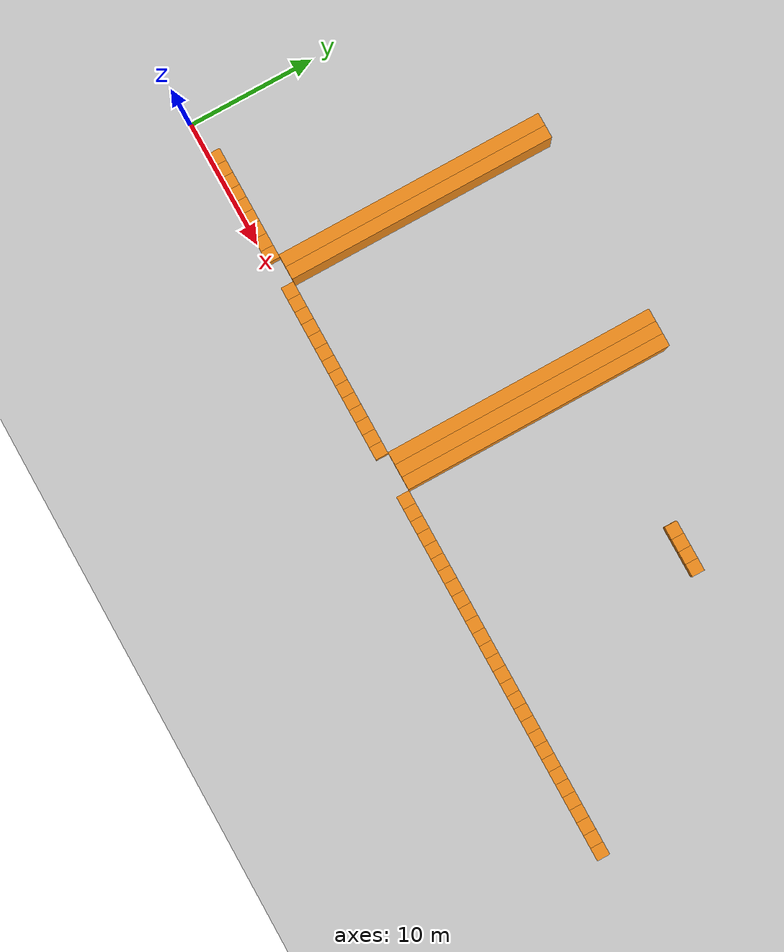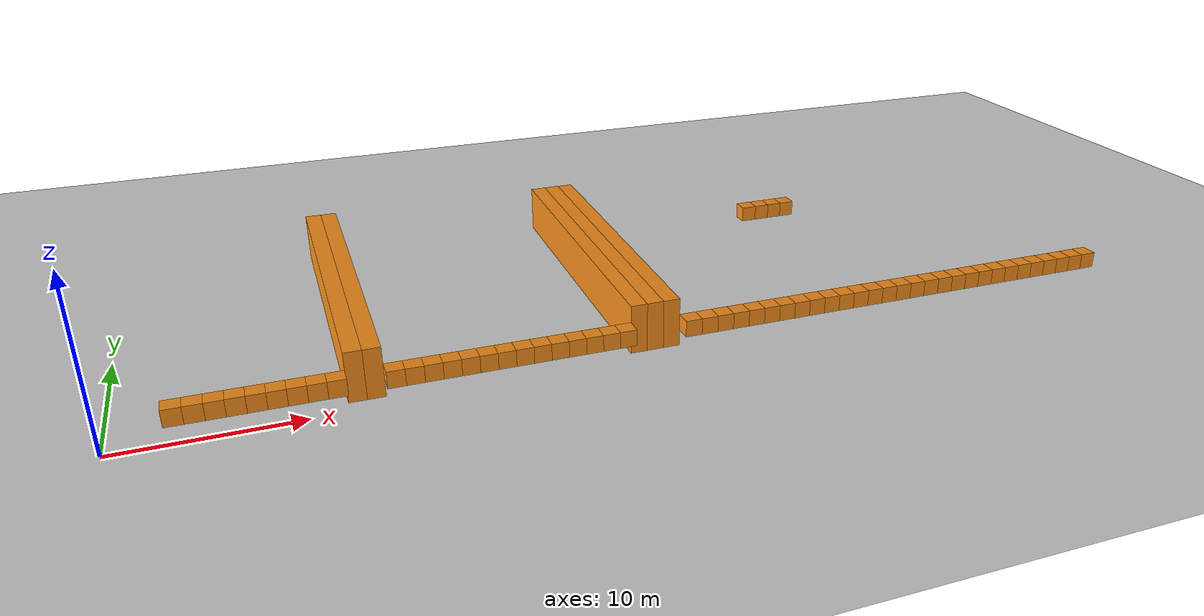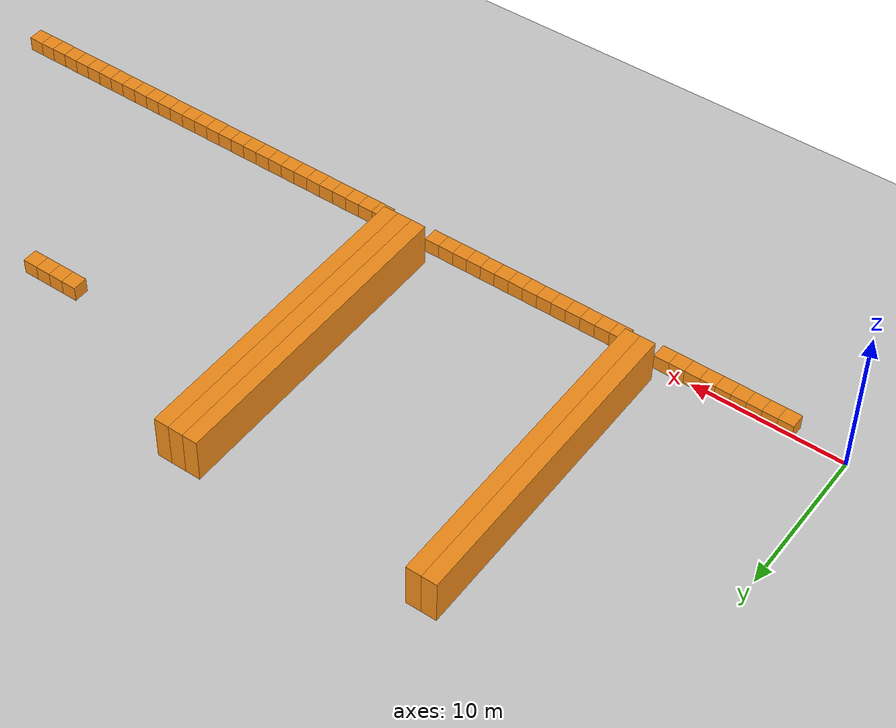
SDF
<sdf version="1.6">
 <world name="default">
  <include><uri>model://ground_plane</uri></include>
  <model name="unit_box_002">
   <pose>3.50     0.50     1.50 0 0 0</pose>
   <static>1</static>
   <link name="link">
    <inertial>
     <mass>5000</mass>
     <inertia><ixx>200</ixx><ixy>0</ixy><ixz>0</ixz><iyy>200</iyy><iyz>0</iyz><izz>200</izz></inertia>
    </inertial>
    <collision name="collision"><geometry><box><size>1 1 1</size></box></geometry></collision>
    <visual name="visual">
     <geometry><box><size>1 1 1</size></box></geometry>
     <material>
      <script><name>Gazebo/Orange</name><uri>file://media/materials/scripts/gazebo.material</uri></script>
     </material>
    </visual>
   </link>
  </model>
  <model name="unit_box_005">
   <pose>4.50     0.50     1.50 0 0 0</pose>
   <static>1</static>
   <link name="link">
    <inertial>
     <mass>5000</mass>
     <inertia><ixx>200</ixx><ixy>0</ixy><ixz>0</ixz><iyy>200</iyy><iyz>0</iyz><izz>200</izz></inertia>
    </inertial>
    <collision name="collision"><geometry><box><size>1 1 1</size></box></geometry></collision>
    <visual name="visual">
     <geometry><box><size>1 1 1</size></box></geometry>
     <material>
      <script><name>Gazebo/Orange</name><uri>file://media/materials/scripts/gazebo.material</uri></script>
     </material>
    </visual>
   </link>
  </model>
  <model name="unit_box_008">
   <pose>5.50     0.50     1.50 0 0 0</pose>
   <static>1</static>
   <link name="link">
    <inertial>
     <mass>5000</mass>
     <inertia><ixx>200</ixx><ixy>0</ixy><ixz>0</ixz><iyy>200</iyy><iyz>0</iyz><izz>200</izz></inertia>
    </inertial>
    <collision name="collision"><geometry><box><size>1 1 1</size></box></geometry></collision>
    <visual name="visual">
     <geometry><box><size>1 1 1</size></box></geometry>
     <material>
      <script><name>Gazebo/Orange</name><uri>file://media/materials/scripts/gazebo.material</uri></script>
     </material>
    </visual>
   </link>
  </model>
  <model name="unit_box_011">
   <pose>6.50     0.50     1.50 0 0 0</pose>
   <static>1</static>
   <link name="link">
    <inertial>
     <mass>5000</mass>
     <inertia><ixx>200</ixx><ixy>0</ixy><ixz>0</ixz><iyy>200</iyy><iyz>0</iyz><izz>200</izz></inertia>
    </inertial>
    <collision name="collision"><geometry><box><size>1 1 1</size></box></geometry></collision>
    <visual name="visual">
     <geometry><box><size>1 1 1</size></box></geometry>
     <material>
      <script><name>Gazebo/Orange</name><uri>file://media/materials/scripts/gazebo.material</uri></script>
     </material>
    </visual>
   </link>
  </model>
  <model name="unit_box_014">
   <pose>7.50     0.50     1.50 0 0 0</pose>
   <static>1</static>
   <link name="link">
    <inertial>
     <mass>5000</mass>
     <inertia><ixx>200</ixx><ixy>0</ixy><ixz>0</ixz><iyy>200</iyy><iyz>0</iyz><izz>200</izz></inertia>
    </inertial>
    <collision name="collision"><geometry><box><size>1 1 1</size></box></geometry></collision>
    <visual name="visual">
     <geometry><box><size>1 1 1</size></box></geometry>
     <material>
      <script><name>Gazebo/Orange</name><uri>file://media/materials/scripts/gazebo.material</uri></script>
     </material>
    </visual>
   </link>
  </model>
  <model name="unit_box_017">
   <pose>8.50     0.50     1.50 0 0 0</pose>
   <static>1</static>
   <link name="link">
    <inertial>
     <mass>5000</mass>
     <inertia><ixx>200</ixx><ixy>0</ixy><ixz>0</ixz><iyy>200</iyy><iyz>0</iyz><izz>200</izz></inertia>
    </inertial>
    <collision name="collision"><geometry><box><size>1 1 1</size></box></geometry></collision>
    <visual name="visual">
     <geometry><box><size>1 1 1</size></box></geometry>
     <material>
      <script><name>Gazebo/Orange</name><uri>file://media/materials/scripts/gazebo.material</uri></script>
     </material>
    </visual>
   </link>
  </model>
  <model name="unit_box_020">
   <pose>9.50     0.50     1.50 0 0 0</pose>
   <static>1</static>
   <link name="link">
    <inertial>
     <mass>5000</mass>
     <inertia><ixx>200</ixx><ixy>0</ixy><ixz>0</ixz><iyy>200</iyy><iyz>0</iyz><izz>200</izz></inertia>
    </inertial>
    <collision name="collision"><geometry><box><size>1 1 1</size></box></geometry></collision>
    <visual name="visual">
     <geometry><box><size>1 1 1</size></box></geometry>
     <material>
      <script><name>Gazebo/Orange</name><uri>file://media/materials/scripts/gazebo.material</uri></script>
     </material>
    </visual>
   </link>
  </model>
  <model name="unit_box_023">
   <pose>10.50     0.50     1.50 0 0 0</pose>
   <static>1</static>
   <link name="link">
    <inertial>
     <mass>5000</mass>
     <inertia><ixx>200</ixx><ixy>0</ixy><ixz>0</ixz><iyy>200</iyy><iyz>0</iyz><izz>200</izz></inertia>
    </inertial>
    <collision name="collision"><geometry><box><size>1 1 1</size></box></geometry></collision>
    <visual name="visual">
     <geometry><box><size>1 1 1</size></box></geometry>
     <material>
      <script><name>Gazebo/Orange</name><uri>file://media/materials/scripts/gazebo.material</uri></script>
     </material>
    </visual>
   </link>
  </model>
  <model name="unit_box_026">
   <pose>11.50     0.50     1.50 0 0 0</pose>
   <static>1</static>
   <link name="link">
    <inertial>
     <mass>5000</mass>
     <inertia><ixx>200</ixx><ixy>0</ixy><ixz>0</ixz><iyy>200</iyy><iyz>0</iyz><izz>200</izz></inertia>
    </inertial>
    <collision name="collision"><geometry><box><size>1 1 1</size></box></geometry></collision>
    <visual name="visual">
     <geometry><box><size>1 1 1</size></box></geometry>
     <material>
      <script><name>Gazebo/Orange</name><uri>file://media/materials/scripts/gazebo.material</uri></script>
     </material>
    </visual>
   </link>
  </model>
  <model name="unit_box_029">
   <pose>12.50    11.50     1.50 0 0 0</pose>
   <static>1</static>
   <link name="link">
    <inertial>
     <mass>5000</mass>
     <inertia><ixx>200</ixx><ixy>0</ixy><ixz>0</ixz><iyy>200</iyy><iyz>0</iyz><izz>200</izz></inertia>
    </inertial>
    <collision name="collision"><geometry><box><size>1 21 3</size></box></geometry></collision>
    <visual name="visual">
     <geometry><box><size>1 21 3</size></box></geometry>
     <material>
      <script><name>Gazebo/Orange</name><uri>file://media/materials/scripts/gazebo.material</uri></script>
     </material>
    </visual>
   </link>
  </model>
  <model name="unit_box_032">
   <pose>13.50    11.50     1.50 0 0 0</pose>
   <static>1</static>
   <link name="link">
    <inertial>
     <mass>5000</mass>
     <inertia><ixx>200</ixx><ixy>0</ixy><ixz>0</ixz><iyy>200</iyy><iyz>0</iyz><izz>200</izz></inertia>
    </inertial>
    <collision name="collision"><geometry><box><size>1 21 3</size></box></geometry></collision>
    <visual name="visual">
     <geometry><box><size>1 21 3</size></box></geometry>
     <material>
      <script><name>Gazebo/Orange</name><uri>file://media/materials/scripts/gazebo.material</uri></script>
     </material>
    </visual>
   </link>
  </model>
  <model name="unit_box_035">
   <pose>14.50     0.50     1.50 0 0 0</pose>
   <static>1</static>
   <link name="link">
    <inertial>
     <mass>5000</mass>
     <inertia><ixx>200</ixx><ixy>0</ixy><ixz>0</ixz><iyy>200</iyy><iyz>0</iyz><izz>200</izz></inertia>
    </inertial>
    <collision name="collision"><geometry><box><size>1 1 1</size></box></geometry></collision>
    <visual name="visual">
     <geometry><box><size>1 1 1</size></box></geometry>
     <material>
      <script><name>Gazebo/Orange</name><uri>file://media/materials/scripts/gazebo.material</uri></script>
     </material>
    </visual>
   </link>
  </model>
  <model name="unit_box_038">
   <pose>15.50     0.50     1.50 0 0 0</pose>
   <static>1</static>
   <link name="link">
    <inertial>
     <mass>5000</mass>
     <inertia><ixx>200</ixx><ixy>0</ixy><ixz>0</ixz><iyy>200</iyy><iyz>0</iyz><izz>200</izz></inertia>
    </inertial>
    <collision name="collision"><geometry><box><size>1 1 1</size></box></geometry></collision>
    <visual name="visual">
     <geometry><box><size>1 1 1</size></box></geometry>
     <material>
      <script><name>Gazebo/Orange</name><uri>file://media/materials/scripts/gazebo.material</uri></script>
     </material>
    </visual>
   </link>
  </model>
  <model name="unit_box_041">
   <pose>16.50     0.50     1.50 0 0 0</pose>
   <static>1</static>
   <link name="link">
    <inertial>
     <mass>5000</mass>
     <inertia><ixx>200</ixx><ixy>0</ixy><ixz>0</ixz><iyy>200</iyy><iyz>0</iyz><izz>200</izz></inertia>
    </inertial>
    <collision name="collision"><geometry><box><size>1 1 1</size></box></geometry></collision>
    <visual name="visual">
     <geometry><box><size>1 1 1</size></box></geometry>
     <material>
      <script><name>Gazebo/Orange</name><uri>file://media/materials/scripts/gazebo.material</uri></script>
     </material>
    </visual>
   </link>
  </model>
  <model name="unit_box_044">
   <pose>17.50     0.50     1.50 0 0 0</pose>
   <static>1</static>
   <link name="link">
    <inertial>
     <mass>5000</mass>
     <inertia><ixx>200</ixx><ixy>0</ixy><ixz>0</ixz><iyy>200</iyy><iyz>0</iyz><izz>200</izz></inertia>
    </inertial>
    <collision name="collision"><geometry><box><size>1 1 1</size></box></geometry></collision>
    <visual name="visual">
     <geometry><box><size>1 1 1</size></box></geometry>
     <material>
      <script><name>Gazebo/Orange</name><uri>file://media/materials/scripts/gazebo.material</uri></script>
     </material>
    </visual>
   </link>
  </model>
  <model name="unit_box_047">
   <pose>18.50     0.50     1.50 0 0 0</pose>
   <static>1</static>
   <link name="link">
    <inertial>
     <mass>5000</mass>
     <inertia><ixx>200</ixx><ixy>0</ixy><ixz>0</ixz><iyy>200</iyy><iyz>0</iyz><izz>200</izz></inertia>
    </inertial>
    <collision name="collision"><geometry><box><size>1 1 1</size></box></geometry></collision>
    <visual name="visual">
     <geometry><box><size>1 1 1</size></box></geometry>
     <material>
      <script><name>Gazebo/Orange</name><uri>file://media/materials/scripts/gazebo.material</uri></script>
     </material>
    </visual>
   </link>
  </model>
  <model name="unit_box_050">
   <pose>19.50     0.50     1.50 0 0 0</pose>
   <static>1</static>
   <link name="link">
    <inertial>
     <mass>5000</mass>
     <inertia><ixx>200</ixx><ixy>0</ixy><ixz>0</ixz><iyy>200</iyy><iyz>0</iyz><izz>200</izz></inertia>
    </inertial>
    <collision name="collision"><geometry><box><size>1 1 1</size></box></geometry></collision>
    <visual name="visual">
     <geometry><box><size>1 1 1</size></box></geometry>
     <material>
      <script><name>Gazebo/Orange</name><uri>file://media/materials/scripts/gazebo.material</uri></script>
     </material>
    </visual>
   </link>
  </model>
  <model name="unit_box_053">
   <pose>20.50     0.50     1.50 0 0 0</pose>
   <static>1</static>
   <link name="link">
    <inertial>
     <mass>5000</mass>
     <inertia><ixx>200</ixx><ixy>0</ixy><ixz>0</ixz><iyy>200</iyy><iyz>0</iyz><izz>200</izz></inertia>
    </inertial>
    <collision name="collision"><geometry><box><size>1 1 1</size></box></geometry></collision>
    <visual name="visual">
     <geometry><box><size>1 1 1</size></box></geometry>
     <material>
      <script><name>Gazebo/Orange</name><uri>file://media/materials/scripts/gazebo.material</uri></script>
     </material>
    </visual>
   </link>
  </model>
  <model name="unit_box_056">
   <pose>21.50     0.50     1.50 0 0 0</pose>
   <static>1</static>
   <link name="link">
    <inertial>
     <mass>5000</mass>
     <inertia><ixx>200</ixx><ixy>0</ixy><ixz>0</ixz><iyy>200</iyy><iyz>0</iyz><izz>200</izz></inertia>
    </inertial>
    <collision name="collision"><geometry><box><size>1 1 1</size></box></geometry></collision>
    <visual name="visual">
     <geometry><box><size>1 1 1</size></box></geometry>
     <material>
      <script><name>Gazebo/Orange</name><uri>file://media/materials/scripts/gazebo.material</uri></script>
     </material>
    </visual>
   </link>
  </model>
  <model name="unit_box_059">
   <pose>22.50     0.50     1.50 0 0 0</pose>
   <static>1</static>
   <link name="link">
    <inertial>
     <mass>5000</mass>
     <inertia><ixx>200</ixx><ixy>0</ixy><ixz>0</ixz><iyy>200</iyy><iyz>0</iyz><izz>200</izz></inertia>
    </inertial>
    <collision name="collision"><geometry><box><size>1 1 1</size></box></geometry></collision>
    <visual name="visual">
     <geometry><box><size>1 1 1</size></box></geometry>
     <material>
      <script><name>Gazebo/Orange</name><uri>file://media/materials/scripts/gazebo.material</uri></script>
     </material>
    </visual>
   </link>
  </model>
  <model name="unit_box_062">
   <pose>23.50     0.50     1.50 0 0 0</pose>
   <static>1</static>
   <link name="link">
    <inertial>
     <mass>5000</mass>
     <inertia><ixx>200</ixx><ixy>0</ixy><ixz>0</ixz><iyy>200</iyy><iyz>0</iyz><izz>200</izz></inertia>
    </inertial>
    <collision name="collision"><geometry><box><size>1 1 1</size></box></geometry></collision>
    <visual name="visual">
     <geometry><box><size>1 1 1</size></box></geometry>
     <material>
      <script><name>Gazebo/Orange</name><uri>file://media/materials/scripts/gazebo.material</uri></script>
     </material>
    </visual>
   </link>
  </model>
  <model name="unit_box_065">
   <pose>24.50     0.50     1.50 0 0 0</pose>
   <static>1</static>
   <link name="link">
    <inertial>
     <mass>5000</mass>
     <inertia><ixx>200</ixx><ixy>0</ixy><ixz>0</ixz><iyy>200</iyy><iyz>0</iyz><izz>200</izz></inertia>
    </inertial>
    <collision name="collision"><geometry><box><size>1 1 1</size></box></geometry></collision>
    <visual name="visual">
     <geometry><box><size>1 1 1</size></box></geometry>
     <material>
      <script><name>Gazebo/Orange</name><uri>file://media/materials/scripts/gazebo.material</uri></script>
     </material>
    </visual>
   </link>
  </model>
  <model name="unit_box_068">
   <pose>25.50     0.50     1.50 0 0 0</pose>
   <static>1</static>
   <link name="link">
    <inertial>
     <mass>5000</mass>
     <inertia><ixx>200</ixx><ixy>0</ixy><ixz>0</ixz><iyy>200</iyy><iyz>0</iyz><izz>200</izz></inertia>
    </inertial>
    <collision name="collision"><geometry><box><size>1 1 1</size></box></geometry></collision>
    <visual name="visual">
     <geometry><box><size>1 1 1</size></box></geometry>
     <material>
      <script><name>Gazebo/Orange</name><uri>file://media/materials/scripts/gazebo.material</uri></script>
     </material>
    </visual>
   </link>
  </model>
  <model name="unit_box_071">
   <pose>26.50     0.50     1.50 0 0 0</pose>
   <static>1</static>
   <link name="link">
    <inertial>
     <mass>5000</mass>
     <inertia><ixx>200</ixx><ixy>0</ixy><ixz>0</ixz><iyy>200</iyy><iyz>0</iyz><izz>200</izz></inertia>
    </inertial>
    <collision name="collision"><geometry><box><size>1 1 1</size></box></geometry></collision>
    <visual name="visual">
     <geometry><box><size>1 1 1</size></box></geometry>
     <material>
      <script><name>Gazebo/Orange</name><uri>file://media/materials/scripts/gazebo.material</uri></script>
     </material>
    </visual>
   </link>
  </model>
  <model name="unit_box_074">
   <pose>27.50     0.50     1.50 0 0 0</pose>
   <static>1</static>
   <link name="link">
    <inertial>
     <mass>5000</mass>
     <inertia><ixx>200</ixx><ixy>0</ixy><ixz>0</ixz><iyy>200</iyy><iyz>0</iyz><izz>200</izz></inertia>
    </inertial>
    <collision name="collision"><geometry><box><size>1 1 1</size></box></geometry></collision>
    <visual name="visual">
     <geometry><box><size>1 1 1</size></box></geometry>
     <material>
      <script><name>Gazebo/Orange</name><uri>file://media/materials/scripts/gazebo.material</uri></script>
     </material>
    </visual>
   </link>
  </model>
  <model name="unit_box_077">
   <pose>28.50    11.50     1.50 0 0 0</pose>
   <static>1</static>
   <link name="link">
    <inertial>
     <mass>5000</mass>
     <inertia><ixx>200</ixx><ixy>0</ixy><ixz>0</ixz><iyy>200</iyy><iyz>0</iyz><izz>200</izz></inertia>
    </inertial>
    <collision name="collision"><geometry><box><size>1 21 3</size></box></geometry></collision>
    <visual name="visual">
     <geometry><box><size>1 21 3</size></box></geometry>
     <material>
      <script><name>Gazebo/Orange</name><uri>file://media/materials/scripts/gazebo.material</uri></script>
     </material>
    </visual>
   </link>
  </model>
  <model name="unit_box_080">
   <pose>29.50    11.50     1.50 0 0 0</pose>
   <static>1</static>
   <link name="link">
    <inertial>
     <mass>5000</mass>
     <inertia><ixx>200</ixx><ixy>0</ixy><ixz>0</ixz><iyy>200</iyy><iyz>0</iyz><izz>200</izz></inertia>
    </inertial>
    <collision name="collision"><geometry><box><size>1 21 3</size></box></geometry></collision>
    <visual name="visual">
     <geometry><box><size>1 21 3</size></box></geometry>
     <material>
      <script><name>Gazebo/Orange</name><uri>file://media/materials/scripts/gazebo.material</uri></script>
     </material>
    </visual>
   </link>
  </model>
  <model name="unit_box_083">
   <pose>30.50    11.50     1.50 0 0 0</pose>
   <static>1</static>
   <link name="link">
    <inertial>
     <mass>5000</mass>
     <inertia><ixx>200</ixx><ixy>0</ixy><ixz>0</ixz><iyy>200</iyy><iyz>0</iyz><izz>200</izz></inertia>
    </inertial>
    <collision name="collision"><geometry><box><size>1 21 3</size></box></geometry></collision>
    <visual name="visual">
     <geometry><box><size>1 21 3</size></box></geometry>
     <material>
      <script><name>Gazebo/Orange</name><uri>file://media/materials/scripts/gazebo.material</uri></script>
     </material>
    </visual>
   </link>
  </model>
  <model name="unit_box_086">
   <pose>31.50     0.50     1.50 0 0 0</pose>
   <static>1</static>
   <link name="link">
    <inertial>
     <mass>5000</mass>
     <inertia><ixx>200</ixx><ixy>0</ixy><ixz>0</ixz><iyy>200</iyy><iyz>0</iyz><izz>200</izz></inertia>
    </inertial>
    <collision name="collision"><geometry><box><size>1 1 1</size></box></geometry></collision>
    <visual name="visual">
     <geometry><box><size>1 1 1</size></box></geometry>
     <material>
      <script><name>Gazebo/Orange</name><uri>file://media/materials/scripts/gazebo.material</uri></script>
     </material>
    </visual>
   </link>
  </model>
  <model name="unit_box_089">
   <pose>32.50     0.50     1.50 0 0 0</pose>
   <static>1</static>
   <link name="link">
    <inertial>
     <mass>5000</mass>
     <inertia><ixx>200</ixx><ixy>0</ixy><ixz>0</ixz><iyy>200</iyy><iyz>0</iyz><izz>200</izz></inertia>
    </inertial>
    <collision name="collision"><geometry><box><size>1 1 1</size></box></geometry></collision>
    <visual name="visual">
     <geometry><box><size>1 1 1</size></box></geometry>
     <material>
      <script><name>Gazebo/Orange</name><uri>file://media/materials/scripts/gazebo.material</uri></script>
     </material>
    </visual>
   </link>
  </model>
  <model name="unit_box_092">
   <pose>33.50     0.50     1.50 0 0 0</pose>
   <static>1</static>
   <link name="link">
    <inertial>
     <mass>5000</mass>
     <inertia><ixx>200</ixx><ixy>0</ixy><ixz>0</ixz><iyy>200</iyy><iyz>0</iyz><izz>200</izz></inertia>
    </inertial>
    <collision name="collision"><geometry><box><size>1 1 1</size></box></geometry></collision>
    <visual name="visual">
     <geometry><box><size>1 1 1</size></box></geometry>
     <material>
      <script><name>Gazebo/Orange</name><uri>file://media/materials/scripts/gazebo.material</uri></script>
     </material>
    </visual>
   </link>
  </model>
  <model name="unit_box_095">
   <pose>34.50     0.50     1.50 0 0 0</pose>
   <static>1</static>
   <link name="link">
    <inertial>
     <mass>5000</mass>
     <inertia><ixx>200</ixx><ixy>0</ixy><ixz>0</ixz><iyy>200</iyy><iyz>0</iyz><izz>200</izz></inertia>
    </inertial>
    <collision name="collision"><geometry><box><size>1 1 1</size></box></geometry></collision>
    <visual name="visual">
     <geometry><box><size>1 1 1</size></box></geometry>
     <material>
      <script><name>Gazebo/Orange</name><uri>file://media/materials/scripts/gazebo.material</uri></script>
     </material>
    </visual>
   </link>
  </model>
  <model name="unit_box_098">
   <pose>35.50     0.50     1.50 0 0 0</pose>
   <static>1</static>
   <link name="link">
    <inertial>
     <mass>5000</mass>
     <inertia><ixx>200</ixx><ixy>0</ixy><ixz>0</ixz><iyy>200</iyy><iyz>0</iyz><izz>200</izz></inertia>
    </inertial>
    <collision name="collision"><geometry><box><size>1 1 1</size></box></geometry></collision>
    <visual name="visual">
     <geometry><box><size>1 1 1</size></box></geometry>
     <material>
      <script><name>Gazebo/Orange</name><uri>file://media/materials/scripts/gazebo.material</uri></script>
     </material>
    </visual>
   </link>
  </model>
  <model name="unit_box_101">
   <pose>36.50     0.50     1.50 0 0 0</pose>
   <static>1</static>
   <link name="link">
    <inertial>
     <mass>5000</mass>
     <inertia><ixx>200</ixx><ixy>0</ixy><ixz>0</ixz><iyy>200</iyy><iyz>0</iyz><izz>200</izz></inertia>
    </inertial>
    <collision name="collision"><geometry><box><size>1 1 1</size></box></geometry></collision>
    <visual name="visual">
     <geometry><box><size>1 1 1</size></box></geometry>
     <material>
      <script><name>Gazebo/Orange</name><uri>file://media/materials/scripts/gazebo.material</uri></script>
     </material>
    </visual>
   </link>
  </model>
  <model name="unit_box_104">
   <pose>37.50     0.50     1.50 0 0 0</pose>
   <static>1</static>
   <link name="link">
    <inertial>
     <mass>5000</mass>
     <inertia><ixx>200</ixx><ixy>0</ixy><ixz>0</ixz><iyy>200</iyy><iyz>0</iyz><izz>200</izz></inertia>
    </inertial>
    <collision name="collision"><geometry><box><size>1 1 1</size></box></geometry></collision>
    <visual name="visual">
     <geometry><box><size>1 1 1</size></box></geometry>
     <material>
      <script><name>Gazebo/Orange</name><uri>file://media/materials/scripts/gazebo.material</uri></script>
     </material>
    </visual>
   </link>
  </model>
  <model name="unit_box_107">
   <pose>38.50     0.50     1.50 0 0 0</pose>
   <static>1</static>
   <link name="link">
    <inertial>
     <mass>5000</mass>
     <inertia><ixx>200</ixx><ixy>0</ixy><ixz>0</ixz><iyy>200</iyy><iyz>0</iyz><izz>200</izz></inertia>
    </inertial>
    <collision name="collision"><geometry><box><size>1 1 1</size></box></geometry></collision>
    <visual name="visual">
     <geometry><box><size>1 1 1</size></box></geometry>
     <material>
      <script><name>Gazebo/Orange</name><uri>file://media/materials/scripts/gazebo.material</uri></script>
     </material>
    </visual>
   </link>
  </model>
  <model name="unit_box_111">
   <pose>39.50     0.50     1.50 0 0 0</pose>
   <static>1</static>
   <link name="link">
    <inertial>
     <mass>5000</mass>
     <inertia><ixx>200</ixx><ixy>0</ixy><ixz>0</ixz><iyy>200</iyy><iyz>0</iyz><izz>200</izz></inertia>
    </inertial>
    <collision name="collision"><geometry><box><size>1 1 1</size></box></geometry></collision>
    <visual name="visual">
     <geometry><box><size>1 1 1</size></box></geometry>
     <material>
      <script><name>Gazebo/Orange</name><uri>file://media/materials/scripts/gazebo.material</uri></script>
     </material>
    </visual>
   </link>
  </model>
  <model name="unit_box_115">
   <pose>40.50     0.50     1.50 0 0 0</pose>
   <static>1</static>
   <link name="link">
    <inertial>
     <mass>5000</mass>
     <inertia><ixx>200</ixx><ixy>0</ixy><ixz>0</ixz><iyy>200</iyy><iyz>0</iyz><izz>200</izz></inertia>
    </inertial>
    <collision name="collision"><geometry><box><size>1 1 1</size></box></geometry></collision>
    <visual name="visual">
     <geometry><box><size>1 1 1</size></box></geometry>
     <material>
      <script><name>Gazebo/Orange</name><uri>file://media/materials/scripts/gazebo.material</uri></script>
     </material>
    </visual>
   </link>
  </model>
  <model name="unit_box_118">
   <pose>41.50     0.50     1.50 0 0 0</pose>
   <static>1</static>
   <link name="link">
    <inertial>
     <mass>5000</mass>
     <inertia><ixx>200</ixx><ixy>0</ixy><ixz>0</ixz><iyy>200</iyy><iyz>0</iyz><izz>200</izz></inertia>
    </inertial>
    <collision name="collision"><geometry><box><size>1 1 1</size></box></geometry></collision>
    <visual name="visual">
     <geometry><box><size>1 1 1</size></box></geometry>
     <material>
      <script><name>Gazebo/Orange</name><uri>file://media/materials/scripts/gazebo.material</uri></script>
     </material>
    </visual>
   </link>
  </model>
  <model name="unit_box_121">
   <pose>42.50     0.50     1.50 0 0 0</pose>
   <static>1</static>
   <link name="link">
    <inertial>
     <mass>5000</mass>
     <inertia><ixx>200</ixx><ixy>0</ixy><ixz>0</ixz><iyy>200</iyy><iyz>0</iyz><izz>200</izz></inertia>
    </inertial>
    <collision name="collision"><geometry><box><size>1 1 1</size></box></geometry></collision>
    <visual name="visual">
     <geometry><box><size>1 1 1</size></box></geometry>
     <material>
      <script><name>Gazebo/Orange</name><uri>file://media/materials/scripts/gazebo.material</uri></script>
     </material>
    </visual>
   </link>
  </model>
  <model name="unit_box_122">
   <pose>42.50    16.00     1.50 0 0 0</pose>
   <static>1</static>
   <link name="link">
    <inertial>
     <mass>5000</mass>
     <inertia><ixx>200</ixx><ixy>0</ixy><ixz>0</ixz><iyy>200</iyy><iyz>0</iyz><izz>200</izz></inertia>
    </inertial>
    <collision name="collision"><geometry><box><size>1 1 1</size></box></geometry></collision>
    <visual name="visual">
     <geometry><box><size>1 1 1</size></box></geometry>
     <material>
      <script><name>Gazebo/Orange</name><uri>file://media/materials/scripts/gazebo.material</uri></script>
     </material>
    </visual>
   </link>
  </model>
  <model name="unit_box_125">
   <pose>43.50     0.50     1.50 0 0 0</pose>
   <static>1</static>
   <link name="link">
    <inertial>
     <mass>5000</mass>
     <inertia><ixx>200</ixx><ixy>0</ixy><ixz>0</ixz><iyy>200</iyy><iyz>0</iyz><izz>200</izz></inertia>
    </inertial>
    <collision name="collision"><geometry><box><size>1 1 1</size></box></geometry></collision>
    <visual name="visual">
     <geometry><box><size>1 1 1</size></box></geometry>
     <material>
      <script><name>Gazebo/Orange</name><uri>file://media/materials/scripts/gazebo.material</uri></script>
     </material>
    </visual>
   </link>
  </model>
  <model name="unit_box_126">
   <pose>43.50    16.00     1.50 0 0 0</pose>
   <static>1</static>
   <link name="link">
    <inertial>
     <mass>5000</mass>
     <inertia><ixx>200</ixx><ixy>0</ixy><ixz>0</ixz><iyy>200</iyy><iyz>0</iyz><izz>200</izz></inertia>
    </inertial>
    <collision name="collision"><geometry><box><size>1 1 1</size></box></geometry></collision>
    <visual name="visual">
     <geometry><box><size>1 1 1</size></box></geometry>
     <material>
      <script><name>Gazebo/Orange</name><uri>file://media/materials/scripts/gazebo.material</uri></script>
     </material>
    </visual>
   </link>
  </model>
  <model name="unit_box_129">
   <pose>44.50     0.50     1.50 0 0 0</pose>
   <static>1</static>
   <link name="link">
    <inertial>
     <mass>5000</mass>
     <inertia><ixx>200</ixx><ixy>0</ixy><ixz>0</ixz><iyy>200</iyy><iyz>0</iyz><izz>200</izz></inertia>
    </inertial>
    <collision name="collision"><geometry><box><size>1 1 1</size></box></geometry></collision>
    <visual name="visual">
     <geometry><box><size>1 1 1</size></box></geometry>
     <material>
      <script><name>Gazebo/Orange</name><uri>file://media/materials/scripts/gazebo.material</uri></script>
     </material>
    </visual>
   </link>
  </model>
  <model name="unit_box_130">
   <pose>44.50    16.00     1.50 0 0 0</pose>
   <static>1</static>
   <link name="link">
    <inertial>
     <mass>5000</mass>
     <inertia><ixx>200</ixx><ixy>0</ixy><ixz>0</ixz><iyy>200</iyy><iyz>0</iyz><izz>200</izz></inertia>
    </inertial>
    <collision name="collision"><geometry><box><size>1 1 1</size></box></geometry></collision>
    <visual name="visual">
     <geometry><box><size>1 1 1</size></box></geometry>
     <material>
      <script><name>Gazebo/Orange</name><uri>file://media/materials/scripts/gazebo.material</uri></script>
     </material>
    </visual>
   </link>
  </model>
  <model name="unit_box_133">
   <pose>45.50     0.50     1.50 0 0 0</pose>
   <static>1</static>
   <link name="link">
    <inertial>
     <mass>5000</mass>
     <inertia><ixx>200</ixx><ixy>0</ixy><ixz>0</ixz><iyy>200</iyy><iyz>0</iyz><izz>200</izz></inertia>
    </inertial>
    <collision name="collision"><geometry><box><size>1 1 1</size></box></geometry></collision>
    <visual name="visual">
     <geometry><box><size>1 1 1</size></box></geometry>
     <material>
      <script><name>Gazebo/Orange</name><uri>file://media/materials/scripts/gazebo.material</uri></script>
     </material>
    </visual>
   </link>
  </model>
  <model name="unit_box_134">
   <pose>45.50    16.00     1.50 0 0 0</pose>
   <static>1</static>
   <link name="link">
    <inertial>
     <mass>5000</mass>
     <inertia><ixx>200</ixx><ixy>0</ixy><ixz>0</ixz><iyy>200</iyy><iyz>0</iyz><izz>200</izz></inertia>
    </inertial>
    <collision name="collision"><geometry><box><size>1 1 1</size></box></geometry></collision>
    <visual name="visual">
     <geometry><box><size>1 1 1</size></box></geometry>
     <material>
      <script><name>Gazebo/Orange</name><uri>file://media/materials/scripts/gazebo.material</uri></script>
     </material>
    </visual>
   </link>
  </model>
  <model name="unit_box_137">
   <pose>46.50     0.50     1.50 0 0 0</pose>
   <static>1</static>
   <link name="link">
    <inertial>
     <mass>5000</mass>
     <inertia><ixx>200</ixx><ixy>0</ixy><ixz>0</ixz><iyy>200</iyy><iyz>0</iyz><izz>200</izz></inertia>
    </inertial>
    <collision name="collision"><geometry><box><size>1 1 1</size></box></geometry></collision>
    <visual name="visual">
     <geometry><box><size>1 1 1</size></box></geometry>
     <material>
      <script><name>Gazebo/Orange</name><uri>file://media/materials/scripts/gazebo.material</uri></script>
     </material>
    </visual>
   </link>
  </model>
  <model name="unit_box_141">
   <pose>47.50     0.50     1.50 0 0 0</pose>
   <static>1</static>
   <link name="link">
    <inertial>
     <mass>5000</mass>
     <inertia><ixx>200</ixx><ixy>0</ixy><ixz>0</ixz><iyy>200</iyy><iyz>0</iyz><izz>200</izz></inertia>
    </inertial>
    <collision name="collision"><geometry><box><size>1 1 1</size></box></geometry></collision>
    <visual name="visual">
     <geometry><box><size>1 1 1</size></box></geometry>
     <material>
      <script><name>Gazebo/Orange</name><uri>file://media/materials/scripts/gazebo.material</uri></script>
     </material>
    </visual>
   </link>
  </model>
  <model name="unit_box_145">
   <pose>48.50     0.50     1.50 0 0 0</pose>
   <static>1</static>
   <link name="link">
    <inertial>
     <mass>5000</mass>
     <inertia><ixx>200</ixx><ixy>0</ixy><ixz>0</ixz><iyy>200</iyy><iyz>0</iyz><izz>200</izz></inertia>
    </inertial>
    <collision name="collision"><geometry><box><size>1 1 1</size></box></geometry></collision>
    <visual name="visual">
     <geometry><box><size>1 1 1</size></box></geometry>
     <material>
      <script><name>Gazebo/Orange</name><uri>file://media/materials/scripts/gazebo.material</uri></script>
     </material>
    </visual>
   </link>
  </model>
  <model name="unit_box_149">
   <pose>49.50     0.50     1.50 0 0 0</pose>
   <static>1</static>
   <link name="link">
    <inertial>
     <mass>5000</mass>
     <inertia><ixx>200</ixx><ixy>0</ixy><ixz>0</ixz><iyy>200</iyy><iyz>0</iyz><izz>200</izz></inertia>
    </inertial>
    <collision name="collision"><geometry><box><size>1 1 1</size></box></geometry></collision>
    <visual name="visual">
     <geometry><box><size>1 1 1</size></box></geometry>
     <material>
      <script><name>Gazebo/Orange</name><uri>file://media/materials/scripts/gazebo.material</uri></script>
     </material>
    </visual>
   </link>
  </model>
  <model name="unit_box_152">
   <pose>50.50     0.50     1.50 0 0 0</pose>
   <static>1</static>
   <link name="link">
    <inertial>
     <mass>5000</mass>
     <inertia><ixx>200</ixx><ixy>0</ixy><ixz>0</ixz><iyy>200</iyy><iyz>0</iyz><izz>200</izz></inertia>
    </inertial>
    <collision name="collision"><geometry><box><size>1 1 1</size></box></geometry></collision>
    <visual name="visual">
     <geometry><box><size>1 1 1</size></box></geometry>
     <material>
      <script><name>Gazebo/Orange</name><uri>file://media/materials/scripts/gazebo.material</uri></script>
     </material>
    </visual>
   </link>
  </model>
  <model name="unit_box_155">
   <pose>51.50     0.50     1.50 0 0 0</pose>
   <static>1</static>
   <link name="link">
    <inertial>
     <mass>5000</mass>
     <inertia><ixx>200</ixx><ixy>0</ixy><ixz>0</ixz><iyy>200</iyy><iyz>0</iyz><izz>200</izz></inertia>
    </inertial>
    <collision name="collision"><geometry><box><size>1 1 1</size></box></geometry></collision>
    <visual name="visual">
     <geometry><box><size>1 1 1</size></box></geometry>
     <material>
      <script><name>Gazebo/Orange</name><uri>file://media/materials/scripts/gazebo.material</uri></script>
     </material>
    </visual>
   </link>
  </model>
  <model name="unit_box_158">
   <pose>52.50     0.50     1.50 0 0 0</pose>
   <static>1</static>
   <link name="link">
    <inertial>
     <mass>5000</mass>
     <inertia><ixx>200</ixx><ixy>0</ixy><ixz>0</ixz><iyy>200</iyy><iyz>0</iyz><izz>200</izz></inertia>
    </inertial>
    <collision name="collision"><geometry><box><size>1 1 1</size></box></geometry></collision>
    <visual name="visual">
     <geometry><box><size>1 1 1</size></box></geometry>
     <material>
      <script><name>Gazebo/Orange</name><uri>file://media/materials/scripts/gazebo.material</uri></script>
     </material>
    </visual>
   </link>
  </model>
  <model name="unit_box_161">
   <pose>53.50     0.50     1.50 0 0 0</pose>
   <static>1</static>
   <link name="link">
    <inertial>
     <mass>5000</mass>
     <inertia><ixx>200</ixx><ixy>0</ixy><ixz>0</ixz><iyy>200</iyy><iyz>0</iyz><izz>200</izz></inertia>
    </inertial>
    <collision name="collision"><geometry><box><size>1 1 1</size></box></geometry></collision>
    <visual name="visual">
     <geometry><box><size>1 1 1</size></box></geometry>
     <material>
      <script><name>Gazebo/Orange</name><uri>file://media/materials/scripts/gazebo.material</uri></script>
     </material>
    </visual>
   </link>
  </model>
  <model name="unit_box_164">
   <pose>54.50     0.50     1.50 0 0 0</pose>
   <static>1</static>
   <link name="link">
    <inertial>
     <mass>5000</mass>
     <inertia><ixx>200</ixx><ixy>0</ixy><ixz>0</ixz><iyy>200</iyy><iyz>0</iyz><izz>200</izz></inertia>
    </inertial>
    <collision name="collision"><geometry><box><size>1 1 1</size></box></geometry></collision>
    <visual name="visual">
     <geometry><box><size>1 1 1</size></box></geometry>
     <material>
      <script><name>Gazebo/Orange</name><uri>file://media/materials/scripts/gazebo.material</uri></script>
     </material>
    </visual>
   </link>
  </model>
  <model name="unit_box_167">
   <pose>55.50     0.50     1.50 0 0 0</pose>
   <static>1</static>
   <link name="link">
    <inertial>
     <mass>5000</mass>
     <inertia><ixx>200</ixx><ixy>0</ixy><ixz>0</ixz><iyy>200</iyy><iyz>0</iyz><izz>200</izz></inertia>
    </inertial>
    <collision name="collision"><geometry><box><size>1 1 1</size></box></geometry></collision>
    <visual name="visual">
     <geometry><box><size>1 1 1</size></box></geometry>
     <material>
      <script><name>Gazebo/Orange</name><uri>file://media/materials/scripts/gazebo.material</uri></script>
     </material>
    </visual>
   </link>
  </model>
  <model name="unit_box_170">
   <pose>56.50     0.50     1.50 0 0 0</pose>
   <static>1</static>
   <link name="link">
    <inertial>
     <mass>5000</mass>
     <inertia><ixx>200</ixx><ixy>0</ixy><ixz>0</ixz><iyy>200</iyy><iyz>0</iyz><izz>200</izz></inertia>
    </inertial>
    <collision name="collision"><geometry><box><size>1 1 1</size></box></geometry></collision>
    <visual name="visual">
     <geometry><box><size>1 1 1</size></box></geometry>
     <material>
      <script><name>Gazebo/Orange</name><uri>file://media/materials/scripts/gazebo.material</uri></script>
     </material>
    </visual>
   </link>
  </model>
  <model name="unit_box_173">
   <pose>57.50     0.50     1.50 0 0 0</pose>
   <static>1</static>
   <link name="link">
    <inertial>
     <mass>5000</mass>
     <inertia><ixx>200</ixx><ixy>0</ixy><ixz>0</ixz><iyy>200</iyy><iyz>0</iyz><izz>200</izz></inertia>
    </inertial>
    <collision name="collision"><geometry><box><size>1 1 1</size></box></geometry></collision>
    <visual name="visual">
     <geometry><box><size>1 1 1</size></box></geometry>
     <material>
      <script><name>Gazebo/Orange</name><uri>file://media/materials/scripts/gazebo.material</uri></script>
     </material>
    </visual>
   </link>
  </model>
  <model name="unit_box_176">
   <pose>58.50     0.50     1.50 0 0 0</pose>
   <static>1</static>
   <link name="link">
    <inertial>
     <mass>5000</mass>
     <inertia><ixx>200</ixx><ixy>0</ixy><ixz>0</ixz><iyy>200</iyy><iyz>0</iyz><izz>200</izz></inertia>
    </inertial>
    <collision name="collision"><geometry><box><size>1 1 1</size></box></geometry></collision>
    <visual name="visual">
     <geometry><box><size>1 1 1</size></box></geometry>
     <material>
      <script><name>Gazebo/Orange</name><uri>file://media/materials/scripts/gazebo.material</uri></script>
     </material>
    </visual>
   </link>
  </model>
  <model name="unit_box_179">
   <pose>59.50     0.50     1.50 0 0 0</pose>
   <static>1</static>
   <link name="link">
    <inertial>
     <mass>5000</mass>
     <inertia><ixx>200</ixx><ixy>0</ixy><ixz>0</ixz><iyy>200</iyy><iyz>0</iyz><izz>200</izz></inertia>
    </inertial>
    <collision name="collision"><geometry><box><size>1 1 1</size></box></geometry></collision>
    <visual name="visual">
     <geometry><box><size>1 1 1</size></box></geometry>
     <material>
      <script><name>Gazebo/Orange</name><uri>file://media/materials/scripts/gazebo.material</uri></script>
     </material>
    </visual>
   </link>
  </model>
 </world>
</sdf>
